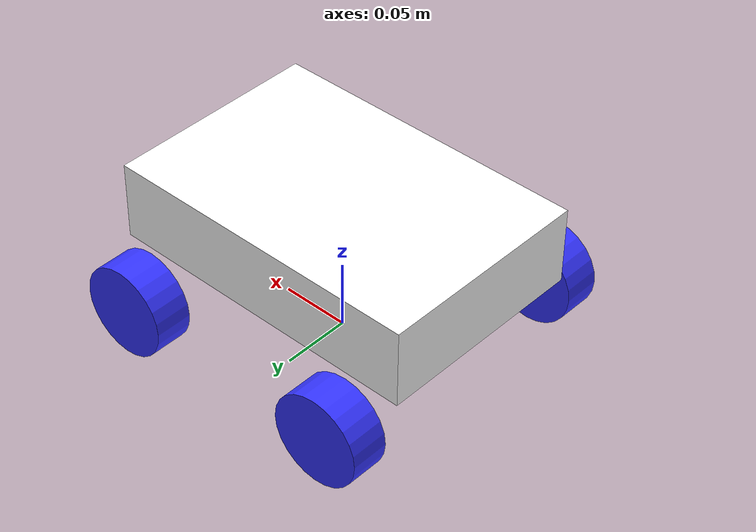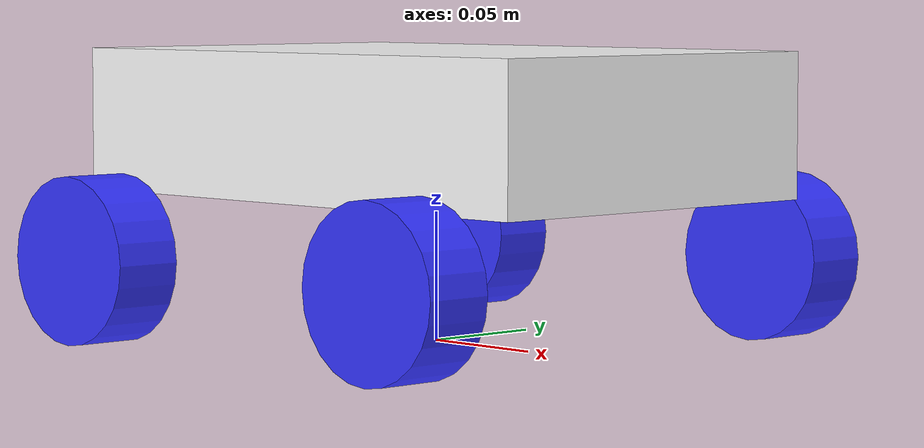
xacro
<?xml version="1.0"?>
<robot xmlns:xacro="http://www.ros.org/wiki/xacro" >

    <xacro:include filename="inertial_macros.xacro"/>

    <xacro:property name="chassis_length" value="0.335"/>
    <xacro:property name="chassis_width" value="0.265"/>
    <xacro:property name="chassis_height" value="0.138"/>
    <xacro:property name="chassis_mass" value="1.0"/>
    <xacro:property name="wheel_radius" value="0.033"/>
    <xacro:property name="wheel_thickness" value="0.026"/>
    <xacro:property name="wheel_mass" value="0.05"/>
    <xacro:property name="wheel_offset_x" value="0.226"/>
    <xacro:property name="wheel_offset_y" value="0.1485"/>
    <xacro:property name="wheel_offset_z" value="0.01"/>
    <xacro:property name="caster_wheel_radius" value="0.01"/>
    <xacro:property name="caster_wheel_mass" value="0.01"/>
    <xacro:property name="caster_wheel_offset_x" value="0.075"/>
    <xacro:property name="caster_wheel_offset_z" value="${wheel_offset_z - wheel_radius + caster_wheel_radius}"/>

    <material name="white">
        <color rgba="1 1 1 1" />
    </material>

    <material name="orange">
        <color rgba="1 0.3 0.1 1"/>
    </material>

    <material name="blue">
        <color rgba="0.2 0.2 1 1"/>
    </material>

    <material name="black">
        <color rgba="0 0 0 1"/>
    </material>

    <material name="red">
        <color rgba="1 0 0 1"/>
    </material>

    <!-- BASE LINK -->

    <link name="base_link">

    </link>

    <!-- BASE FOOOTPRINT -->
    <joint name= "base_footprint_joint" type="fixed">
        <parent link="base_link"/>
        <child link="base_footprint"/>
        <origin xyz= "0 0 0" rpy= "0 0 0"/>
    </joint>

    <link name= "base_footprint">

    </link>

    <!-- CHASSIS LINK -->

    <joint name="chassis_joint" type="fixed">
        <parent link="base_link"/>
        <child link="chassis"/>
        <origin xyz="-0.116 0 0.057"/>
    </joint>

    <link name="chassis">
        <visual>
            <origin xyz="0.116 0 0.028"/>
            <geometry>
                <box size="0.232 0.155 0.056"/>
            </geometry>
            <material name="white"/>
        </visual>
        <collision>
            <origin xyz="0.116 0 0.028"/>
            <geometry>
                <box size="0.232 0.155 0.056"/>
            </geometry>
        </collision>
        <xacro:inertial_box mass="0.5" x="0.232" y="0.155" z="0.056">
            <origin xyz="0.116 0 0.028" rpy="0 0 0"/>
        </xacro:inertial_box>
    </link>

    <gazebo reference="chassis">
        <material>Gazebo/White</material>
    </gazebo>

    <!-- rear LEFT WHEEL LINK -->

    <joint name="left_wheel_joint" type="continuous">
        <parent link="base_link"/>
        <child link="left_wheel"/>
        <origin xyz="-0.084 0.101 0.0325" rpy="-${pi/2} 0 0" />
        <axis xyz="0 0 1"/>
    </joint>

    <link name="left_wheel">
        <visual>
            <geometry>
                <cylinder radius="0.0325" length="0.027"/>
            </geometry>
            <material name="blue"/>
        </visual>
        <collision>
            <geometry>
                <sphere radius="0.0325" />
            </geometry>
        </collision>
        <xacro:inertial_cylinder mass="0.1" length="0.027" radius="0.0325">
            <origin xyz="0 0 0" rpy="0 0 0"/>
        </xacro:inertial_cylinder>
    </link>

    <gazebo reference="left_wheel">
        <material>Gazebo/Blue</material>
    </gazebo>

    <!-- rear RIGHT WHEEL LINK -->

    <joint name="right_wheel_joint" type="continuous">
        <parent link="base_link"/>
        <child link="right_wheel"/>
        <origin xyz="-0.084 -0.101 0.0325" rpy="${pi/2} 0 0" />
        <axis xyz="0 0 -1"/>
    </joint>

    <link name="right_wheel">
        <visual>
            <geometry>
                <cylinder radius="0.0325" length="0.027"/>
            </geometry>
            <material name="blue"/>
        </visual>
        <collision>
            <geometry>
                <sphere radius="0.0325" />
            </geometry>
        </collision>
        <xacro:inertial_cylinder mass="0.1" length="0.027" radius="0.0325">
            <origin xyz="0 0 0" rpy="0 0 0"/>
        </xacro:inertial_cylinder>
    </link>

    <gazebo reference="right_wheel">
        <material>Gazebo/Blue</material>
    </gazebo>

 <!-- front LEFT WHEEL LINK -->

    <joint name="front_left_wheel_joint" type="continuous">
        <parent link="base_link"/>
        <child link="front_left_wheel"/>
        <origin xyz="0.084 0.101 0.0325" rpy="-${pi/2} 0 0" />
        <axis xyz="0 0 1"/>
    </joint>

    <link name="front_left_wheel">
        <visual>
            <geometry>
                <cylinder radius="0.0325" length="0.027"/>
            </geometry>
            <material name="blue"/>
        </visual>
        <collision>
            <geometry>
                <sphere radius="0.0325" />
            </geometry>
        </collision>
        <xacro:inertial_cylinder mass="0.1" length="0.027" radius="0.0325">
            <origin xyz="0 0 0" rpy="0 0 0"/>
        </xacro:inertial_cylinder>
    </link>

    <gazebo reference="front_left_wheel">
        <material>Gazebo/Blue</material>
    </gazebo>

    <!-- front RIGHT WHEEL LINK -->

    <joint name="front_right_wheel_joint" type="continuous">
        <parent link="base_link"/>
        <child link="front_right_wheel"/>
        <origin xyz="0.084 -0.101 0.0325" rpy="${pi/2} 0 0" />
        <axis xyz="0 0 -1"/>
    </joint>

    <link name="front_right_wheel">
        <visual>
            <geometry>
                <cylinder radius="0.0325" length="0.027"/>
            </geometry>
            <material name="blue"/>
        </visual>
        <collision>
            <geometry>
                <sphere radius="0.0325" />
            </geometry>
        </collision>
        <xacro:inertial_cylinder mass="0.1" length="0.027" radius="0.0325">
            <origin xyz="0 0 0" rpy="0 0 0"/>
        </xacro:inertial_cylinder>
    </link>

    <gazebo reference="front_right_wheel">
        <material>Gazebo/Blue</material>
    </gazebo>

</robot>
